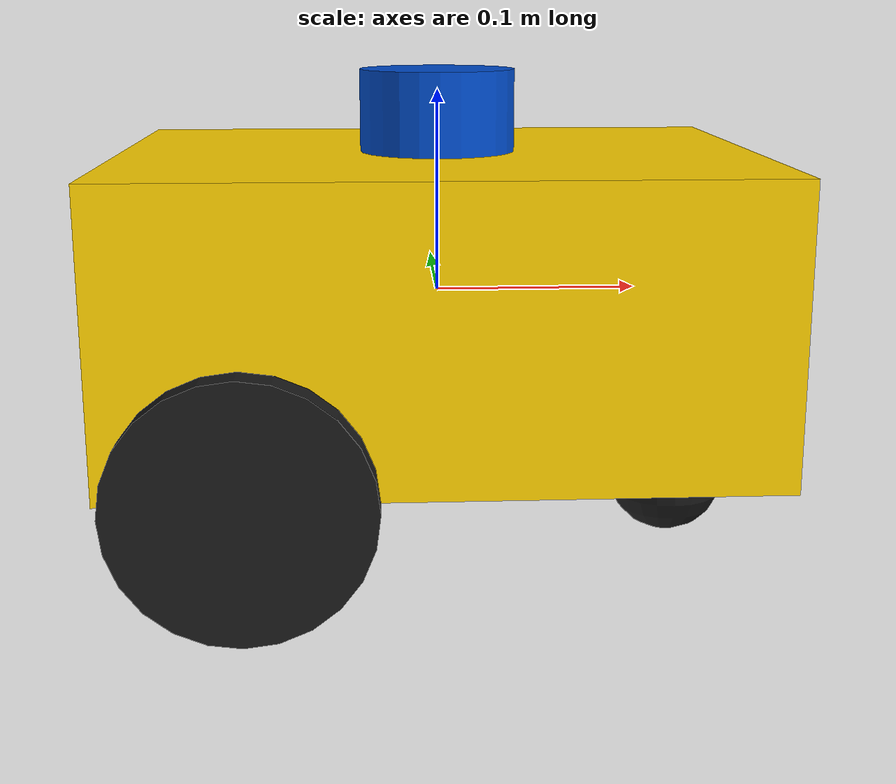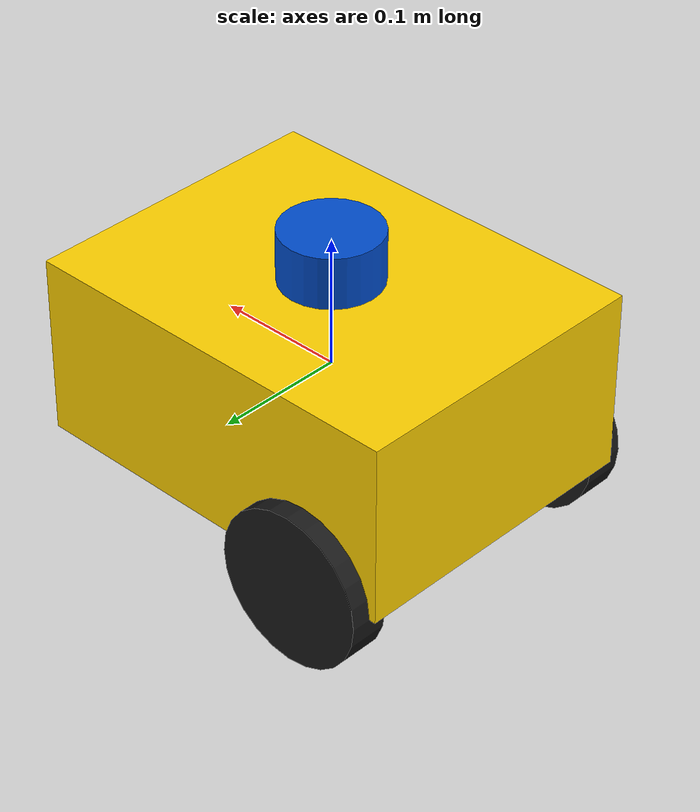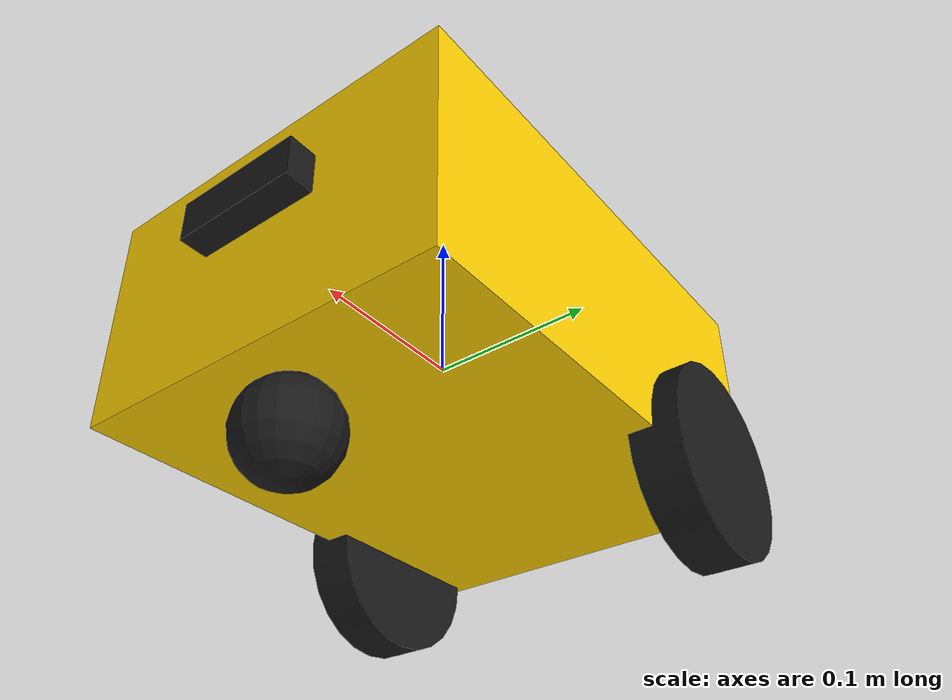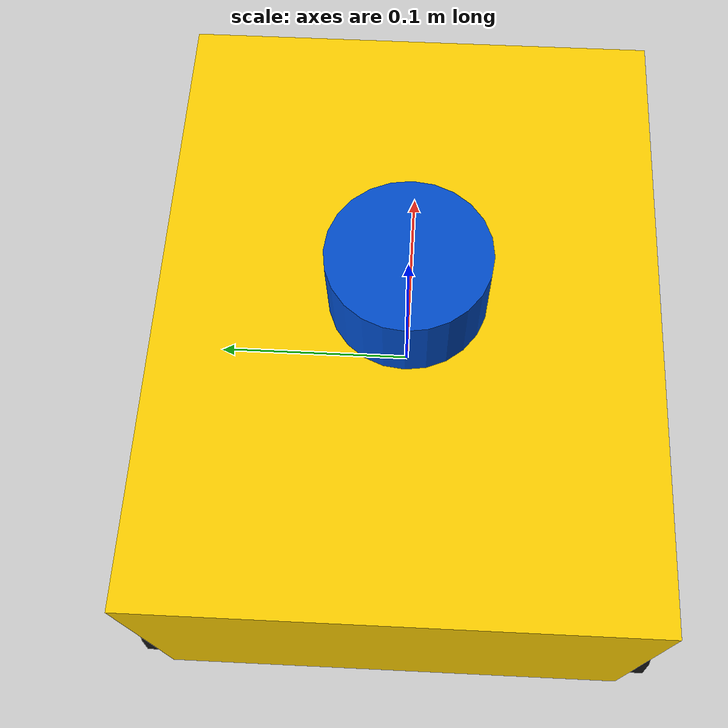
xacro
<?xml version="1.0"?>
<robot xmlns:xacro="http://www.ros.org/wiki/xacro" name="husky">

  <xacro:property name="wheel_radius"  value="0.06"/>
  <xacro:property name="wheel_width"   value="0.03"/>
  <xacro:property name="track"         value="0.24"/>   <!-- separação esq-dir -->
  <xacro:property name="rear_wheel_x"  value="-0.09"/>  <!-- eixo traseiro -->
  <xacro:property name="caster_x"      value="0.12"/>
  <xacro:property name="caster_radius" value="0.03"/>

  <xacro:property name="body_length"   value="0.31"/>
  <xacro:property name="body_width"    value="0.24"/>
  <xacro:property name="body_height"   value="0.14"/>

  <!-- LiDAR centralizado em cima do corpo, coerente com husky.sdf -->
  <xacro:property name="lidar_x"       value="0.0"/>
  <xacro:property name="lidar_z"       value="0.09"/>

  <link name="base_link">
    <visual>
      <geometry><box size="${body_length} ${body_width} ${body_height}"/></geometry>
      <material name="husky_yellow"><color rgba="1.0 0.82 0.0 1.0"/></material>
    </visual>
    <collision>
      <geometry><box size="${body_length} ${body_width} ${body_height}"/></geometry>
    </collision>
    <inertial>
      <mass value="3.0"/>
      <inertia ixx="0.025" ixy="0" ixz="0" iyy="0.035" iyz="0" izz="0.05"/>
    </inertial>
  </link>

  <xacro:macro name="wheel" params="name x y">
    <joint name="${name}_joint" type="continuous">
      <parent link="base_link"/>
      <child link="${name}"/>
      <origin xyz="${x} ${y} ${-body_height/2}" rpy="${-pi/2} 0 0"/>
      <axis xyz="0 0 1"/>
    </joint>
    <link name="${name}">
      <visual>
        <geometry><cylinder radius="${wheel_radius}" length="${wheel_width}"/></geometry>
        <material name="black"><color rgba="0.1 0.1 0.1 1.0"/></material>
      </visual>
      <collision>
        <geometry><cylinder radius="${wheel_radius}" length="${wheel_width}"/></geometry>
      </collision>
      <inertial>
        <mass value="0.2"/>
        <inertia ixx="0.0003" ixy="0" ixz="0" iyy="0.0003" iyz="0" izz="0.0005"/>
      </inertial>
    </link>
  </xacro:macro>

  <xacro:wheel name="rear_left_wheel"   x="${rear_wheel_x}" y="${ track/2}"/>
  <xacro:wheel name="rear_right_wheel"  x="${rear_wheel_x}" y="${-track/2}"/>

  <!-- Roda boba (caster) — sphere fixa na frente, bate com o husky.sdf -->
  <joint name="caster_joint" type="fixed">
    <parent link="base_link"/>
    <child link="caster_wheel"/>
    <!-- z = -(wheel_radius + body_height/2 - caster_radius) p/ alinhar
         com o chão quando base_link está em z=wheel_radius+body_height/2 -->
    <origin xyz="${caster_x} 0 -0.10" rpy="0 0 0"/>
  </joint>
  <link name="caster_wheel">
    <visual>
      <geometry><sphere radius="${caster_radius}"/></geometry>
      <material name="black"/>
    </visual>
    <collision>
      <geometry><sphere radius="${caster_radius}"/></geometry>
    </collision>
    <inertial>
      <mass value="0.05"/>
      <inertia ixx="1e-5" ixy="0" ixz="0" iyy="1e-5" iyz="0" izz="1e-5"/>
    </inertial>
  </link>

  <joint name="laser_joint" type="fixed">
    <parent link="base_link"/>
    <child link="base_laser"/>
    <origin xyz="${lidar_x} 0 ${lidar_z}" rpy="0 0 0"/>
  </joint>

  <link name="base_laser">
    <visual>
      <geometry><cylinder radius="0.038" length="0.04"/></geometry>
      <material name="blue"><color rgba="0.0 0.3 0.8 1.0"/></material>
    </visual>
    <collision>
      <geometry><cylinder radius="0.038" length="0.04"/></geometry>
    </collision>
    <inertial>
      <mass value="0.1"/>
      <inertia ixx="0.0001" ixy="0" ixz="0" iyy="0.0001" iyz="0" izz="0.0001"/>
    </inertial>
  </link>

  <joint name="camera_joint" type="fixed">
    <parent link="base_link"/>
    <child link="camera_link"/>
    <origin xyz="0.16 0 0.02" rpy="0 0 0"/>
  </joint>

  <link name="camera_link">
    <visual>
      <geometry><box size="0.025 0.080 0.025"/></geometry>
      <material name="black"><color rgba="0.1 0.1 0.1 1.0"/></material>
    </visual>
    <inertial>
      <mass value="0.05"/>
      <inertia ixx="0.00001" ixy="0" ixz="0" iyy="0.00001" iyz="0" izz="0.00001"/>
    </inertial>
  </link>

</robot>
